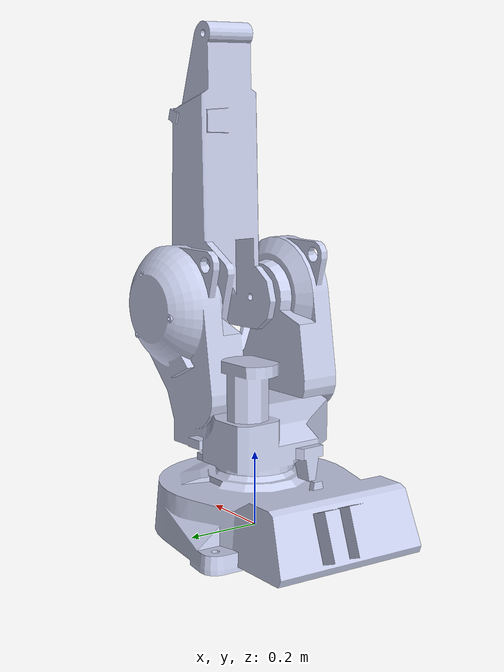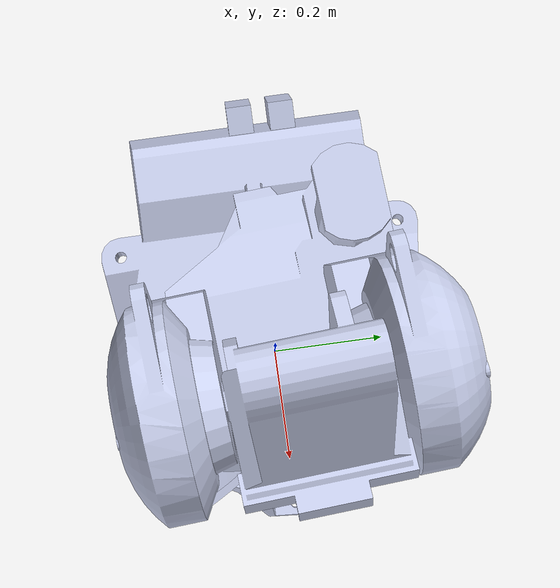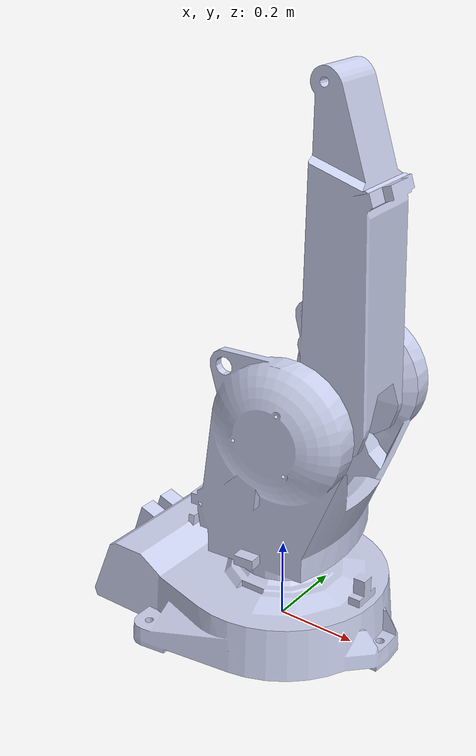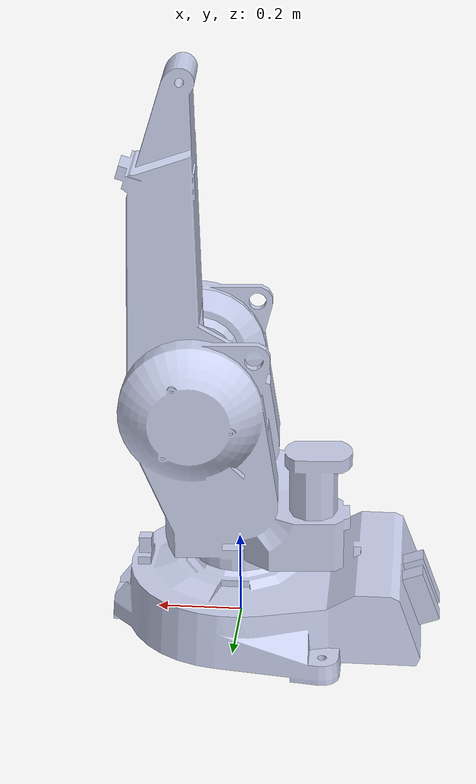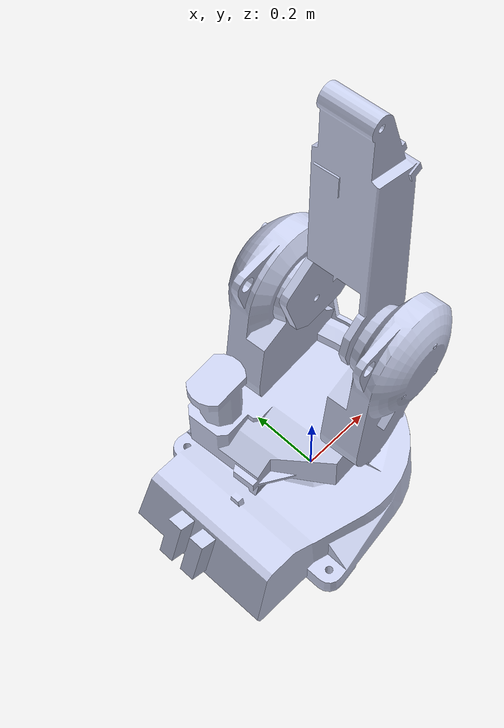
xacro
<?xml version="1.0" encoding="utf-8"?>
<robot
  name="Exp4a">
  <link
    name="base_link">
    <inertial>
      <origin
        xyz="-0.0942482366980368 0.00034841181543606 0.0698252025045274"
        rpy="0 0 0" />
      <mass
        value="45.100751124013" />
      <inertia
        ixx="0.904395771792202"
        ixy="0.00553474911760541"
        ixz="0.02398152767563"
        iyy="1.65416974621034"
        iyz="-0.000559853203844208"
        izz="2.38903477327703" />
    </inertial>
    <visual>
      <origin
        xyz="0 0 0"
        rpy="0 0 0" />
      <geometry>
        <mesh
          filename="package://Exp4a/meshes/base_link.STL" />
      </geometry>
      <material
        name="">
        <color
          rgba="0.792156862745098 0.819607843137255 0.933333333333333 1" />
      </material>
    </visual>
    <collision>
      <origin
        xyz="0 0 0"
        rpy="0 0 0" />
      <geometry>
        <mesh
          filename="package://Exp4a/meshes/base_link.STL" />
      </geometry>
    </collision>
  </link>
  <link
    name="Swivel">
    <inertial>
      <origin
        xyz="0.0338387160019819 0.0183002939600045 0.274868903694973"
        rpy="0 0 0" />
      <mass
        value="47.9939858945412" />
      <inertia
        ixx="2.26462021835913"
        ixy="0.104482896195246"
        ixz="-0.357348245737225"
        iyy="1.75194669684452"
        iyz="0.0193195705611302"
        izz="1.63365848320273" />
    </inertial>
    <visual>
      <origin
        xyz="0 0 0"
        rpy="0 0 0" />
      <geometry>
        <mesh
          filename="package://Exp4a/meshes/Swivel.STL" />
      </geometry>
      <material
        name="">
        <color
          rgba="0.792156862745098 0.819607843137255 0.933333333333333 1" />
      </material>
    </visual>
    <collision>
      <origin
        xyz="0 0 0"
        rpy="0 0 0" />
      <geometry>
        <mesh
          filename="package://Exp4a/meshes/Swivel.STL" />
      </geometry>
    </collision>
  </link>
  <joint
    name="Joint1"
    type="revolute">
    <origin
      xyz="0 0 0.164"
      rpy="0 0 0.068596" />
    <parent
      link="base_link" />
    <child
      link="Swivel" />
    <axis
      xyz="0 0 1" />
    <limit
      lower="-3.14"
      upper="3.14"
      effort="10"
      velocity="2.618" />
  </joint>
  <link
    name="Arm">
    <inertial>
      <origin
        xyz="0.0508731045196118 0.00746958193207304 0.321534281626339"
        rpy="0 0 0" />
      <mass
        value="15.892970415351" />
      <inertia
        ixx="0.642112396550128"
        ixy="0.00117650675403156"
        ixz="0.023464167733746"
        iyy="0.630494054637527"
        iyz="0.000756305686730419"
        izz="0.0852091581783339" />
    </inertial>
    <visual>
      <origin
        xyz="0 0 0"
        rpy="0 0 0" />
      <geometry>
        <mesh
          filename="package://Exp4a/meshes/Arm.STL" />
      </geometry>
      <material
        name="">
        <color
          rgba="0.792156862745098 0.819607843137255 0.933333333333333 1" />
      </material>
    </visual>
    <collision>
      <origin
        xyz="0 0 0"
        rpy="0 0 0" />
      <geometry>
        <mesh
          filename="package://Exp4a/meshes/Arm.STL" />
      </geometry>
    </collision>
  </link>
  <joint
    name="Joint2"
    type="revolute">
    <origin
      xyz="0.1 0 0.44"
      rpy="0 0.024043 0" />
    <parent
      link="Swivel" />
    <child
      link="Arm" />
    <axis
      xyz="0 1 0" />
    <limit
      lower="-1.7453"
      upper="1.9198"
      effort="10"
      velocity="2.618" />
  </joint>
  <gazebo reference="Swivel">
        <mu1 value="200.0"/>
        <mu2 value="100.0"/>
        <kp value="10000000.0" />
        <kd value="1.0" />
        <material>Gazebo/Grey</material>
        </gazebo>
  <transmission name="Swivel_trans">
        <type>transmission_interface/SimpleTransmission</type>
        <actuator name="Swivel_motor">
            <mechanicalReduction>1</mechanicalReduction>
        </actuator>
        <joint name="Joint1">
            <hardwareInterface>hardware_interface/PositionJointInterface</hardwareInterface>
        </joint>
  </transmission>
  <gazebo reference="Arm">
        <mu1 value="200.0"/>
        <mu2 value="100.0"/>
        <kp value="10000000.0" />
        <kd value="1.0" />
        <material>Gazebo/Grey</material>
        </gazebo>
  <transmission name="Arm_trans">
        <type>transmission_interface/SimpleTransmission</type>
        <actuator name="Arm_motor">
            <mechanicalReduction>1</mechanicalReduction>
        </actuator>
        <joint name="Joint2">
            <hardwareInterface>hardware_interface/PositionJointInterface</hardwareInterface>
        </joint>
  </transmission>
  <gazebo>
    <plugin name="gazebo_ros_control" filename="libgazebo_ros_control.so">
    </plugin>
  </gazebo>
</robot>
